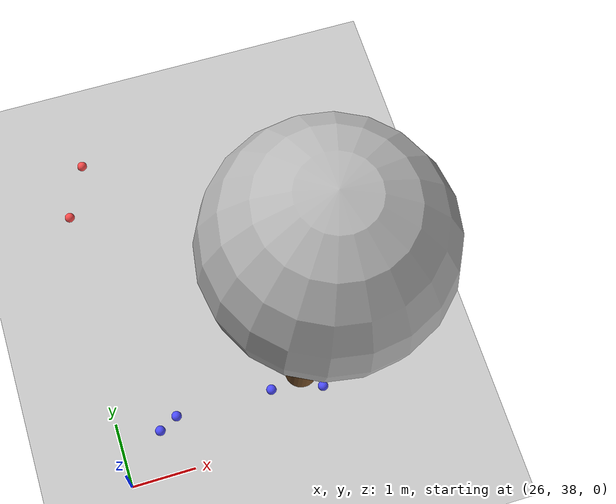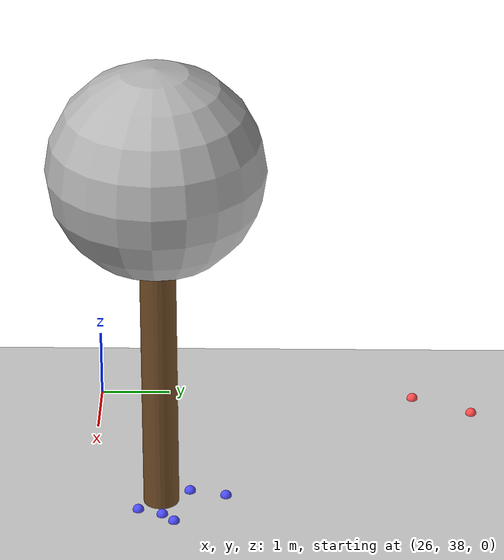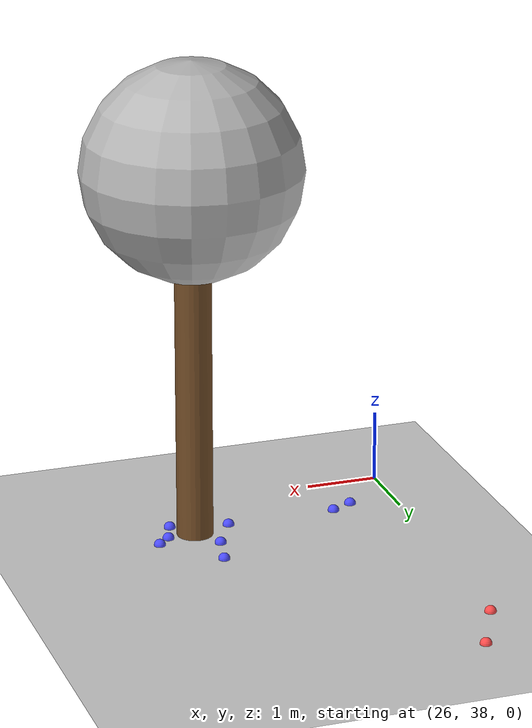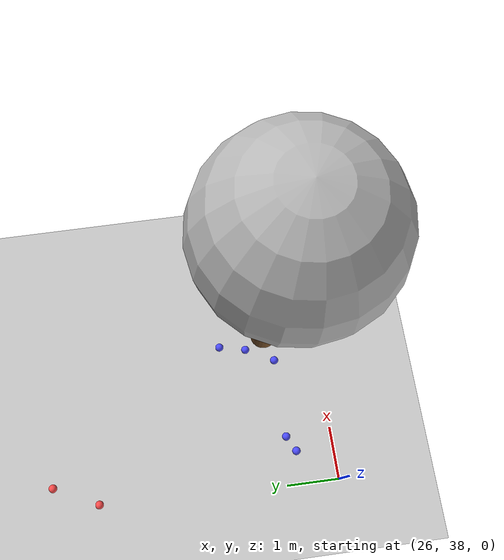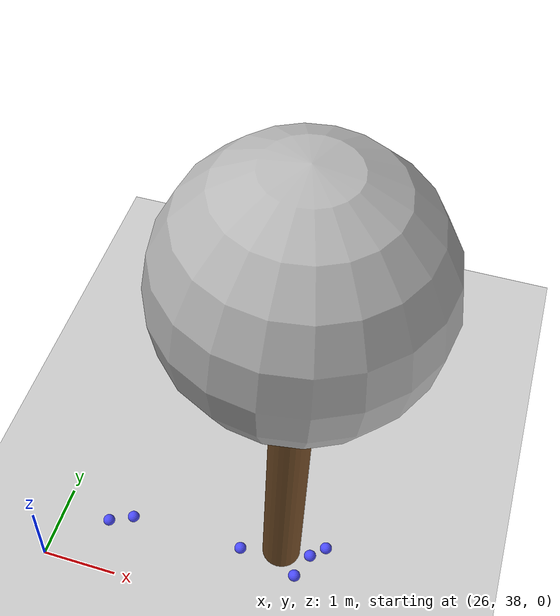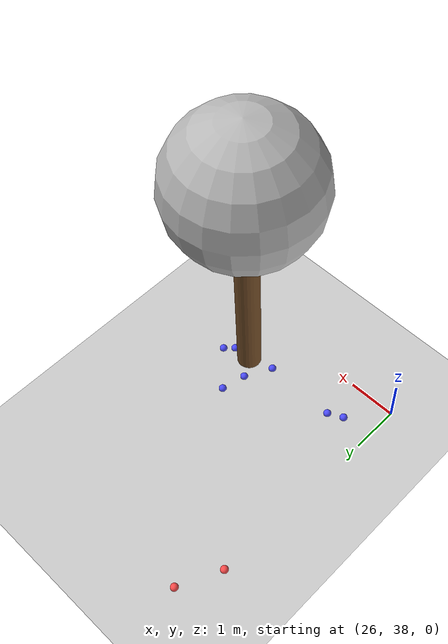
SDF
<sdf version="1.7">
 <world name="default">
  <model name="ground_plane">
   <static>1</static>
   <link name="link">
    <collision name="collision">
     <geometry><plane><normal>0 0 1</normal><size>100 100</size></plane></geometry>
     <surface>
      <contact><collide_bitmask>65535</collide_bitmask></contact>
      <friction><ode><mu>100</mu><mu2>50</mu2></ode></friction>
     </surface>
    </collision>
    <visual name="visual">
     <cast_shadows>0</cast_shadows>
     <geometry><plane><normal>0 0 1</normal><size>100 100</size></plane></geometry>
     <material>
      <script><uri>file://media/materials/scripts/gazebo.material</uri><name>Gazebo/Grey</name></script>
     </material>
    </visual>
   </link>
  </model>
  <model name="tree_simple_18">
   <static>1</static>
   <link name="link">
    <pose>0 0 0.1 0 -0 0</pose>
    <inertial>
     <mass>666</mass>
     <inertia>
      <ixx>0.0861167</ixx>
      <ixy>0</ixy>
      <ixz>0</ixz>
      <iyy>0.0861167</iyy>
      <iyz>0</iyz>
      <izz>0.0861167</izz>
     </inertia>
    </inertial>
    <collision name="collision_trunk">
     <pose>0 0 2 0 -0 0</pose>
     <geometry><cylinder><radius>0.25</radius><length>4</length></cylinder></geometry>
     <surface>
      <contact>
       <poissons_ratio>0.347</poissons_ratio>
       <elastic_modulus>8.8e+09</elastic_modulus>
       <ode><kp>100000</kp><kd>100</kd><max_vel>100</max_vel><min_depth>0.001</min_depth></ode>
      </contact>
      <friction>
       <torsional>
        <coefficient>1</coefficient>
        <use_patch_radius>0</use_patch_radius>
        <surface_radius>0.01</surface_radius>
       </torsional>
      </friction>
     </surface>
    </collision>
    <collision name="collision_treetop">
     <pose>0 0 5.2 0 -0 0</pose>
     <geometry><sphere><radius>1.5</radius></sphere></geometry>
     <surface>
      <contact>
       <poissons_ratio>0.347</poissons_ratio>
       <elastic_modulus>8.8e+09</elastic_modulus>
       <ode><kp>100000</kp><kd>100</kd><max_vel>100</max_vel><min_depth>0.001</min_depth></ode>
      </contact>
      <friction>
       <torsional>
        <coefficient>1</coefficient>
        <use_patch_radius>0</use_patch_radius>
        <surface_radius>0.01</surface_radius>
       </torsional>
      </friction>
     </surface>
    </collision>
    <visual name="trunk">
     <pose>0 0 2 0 -0 0</pose>
     <geometry><cylinder><radius>0.25</radius><length>4</length></cylinder></geometry>
     <material>
      <script>
       <uri>model://tree_simple/scripts</uri>
       <uri>model://tree_simple/materials/textures</uri>
       <name>TreeSimple/Trunk</name>
      </script>
     </material>
    </visual>
    <visual name="treetop">
     <pose>0 0 5.2 0 -0 0</pose>
     <geometry><sphere><radius>1.5</radius></sphere></geometry>
     <material>
      <script>
       <uri>model://tree_simple/scripts</uri>
       <uri>model://tree_simple/materials/textures</uri>
       <name>TreeSimple/Treetop</name>
      </script>
     </material>
    </visual>
   </link>
   <pose>29 39 -0.1 0 -0 0</pose>
  </model>
  <model name="seed_red_46">
   <link name="link">
    <inertial>
     <mass>1</mass>
     <inertia><ixx>0.1</ixx><ixy>0</ixy><ixz>0</ixz><iyy>0.1</iyy><iyz>0</iyz><izz>0.1</izz></inertia>
    </inertial>
    <visual name="visual">
     <geometry><sphere><radius>0.08</radius></sphere></geometry>
     <material>
      <script><name>Gazebo/Grey</name><uri>file://media/materials/scripts/gazebo.material</uri></script>
      <shader type="pixel"><normal_map>__default__</normal_map></shader>
      <ambient>1 0.3 0.3 1</ambient>
      <diffuse>0.7 0.7 0.7 1</diffuse>
      <specular>0.01 0.01 0.01 1</specular>
      <emissive>0 0 0 1</emissive>
     </material>
    </visual>
    <collision name="collision">
     <geometry><sphere><radius>0.0005</radius></sphere></geometry>
     <surface>
      <friction>
       <ode><mu>1</mu><mu2>1</mu2><fdir1>0 0 0</fdir1><slip1>0</slip1><slip2>0</slip2></ode>
       <torsional>
        <coefficient>1</coefficient>
        <patch_radius>0</patch_radius>
        <surface_radius>0</surface_radius>
        <use_patch_radius>1</use_patch_radius>
        <ode><slip>0</slip></ode>
       </torsional>
      </friction>
      <bounce><restitution_coefficient>0</restitution_coefficient><threshold>1e+06</threshold></bounce>
      <contact>
       <collide_without_contact>0</collide_without_contact>
       <collide_without_contact_bitmask>1</collide_without_contact_bitmask>
       <collide_bitmask>1</collide_bitmask>
       <ode>
        <soft_cfm>0</soft_cfm>
        <soft_erp>0.2</soft_erp>
        <kp>1e+13</kp>
        <kd>1</kd>
        <max_vel>0.01</max_vel>
        <min_depth>0</min_depth>
       </ode>
       <bullet>
        <split_impulse>1</split_impulse>
        <split_impulse_penetration_threshold>-0.01</split_impulse_penetration_threshold>
        <soft_cfm>0</soft_cfm>
        <soft_erp>0.2</soft_erp>
        <kp>1e+13</kp>
        <kd>1</kd>
       </bullet>
      </contact>
     </surface>
    </collision>
   </link>
   <static>0</static>
   <pose>26.1329 42.5972 0.0005 0 -0 0</pose>
  </model>
  <model name="seed_red_47">
   <link name="link">
    <inertial>
     <mass>1</mass>
     <inertia><ixx>0.1</ixx><ixy>0</ixy><ixz>0</ixz><iyy>0.1</iyy><iyz>0</iyz><izz>0.1</izz></inertia>
    </inertial>
    <visual name="visual">
     <geometry><sphere><radius>0.08</radius></sphere></geometry>
     <material>
      <script><name>Gazebo/Grey</name><uri>file://media/materials/scripts/gazebo.material</uri></script>
      <shader type="pixel"><normal_map>__default__</normal_map></shader>
      <ambient>1 0.3 0.3 1</ambient>
      <diffuse>0.7 0.7 0.7 1</diffuse>
      <specular>0.01 0.01 0.01 1</specular>
      <emissive>0 0 0 1</emissive>
     </material>
    </visual>
    <collision name="collision">
     <geometry><sphere><radius>0.0005</radius></sphere></geometry>
     <surface>
      <friction>
       <ode><mu>1</mu><mu2>1</mu2><fdir1>0 0 0</fdir1><slip1>0</slip1><slip2>0</slip2></ode>
       <torsional>
        <coefficient>1</coefficient>
        <patch_radius>0</patch_radius>
        <surface_radius>0</surface_radius>
        <use_patch_radius>1</use_patch_radius>
        <ode><slip>0</slip></ode>
       </torsional>
      </friction>
      <bounce><restitution_coefficient>0</restitution_coefficient><threshold>1e+06</threshold></bounce>
      <contact>
       <collide_without_contact>0</collide_without_contact>
       <collide_without_contact_bitmask>1</collide_without_contact_bitmask>
       <collide_bitmask>1</collide_bitmask>
       <ode>
        <soft_cfm>0</soft_cfm>
        <soft_erp>0.2</soft_erp>
        <kp>1e+13</kp>
        <kd>1</kd>
        <max_vel>0.01</max_vel>
        <min_depth>0</min_depth>
       </ode>
       <bullet>
        <split_impulse>1</split_impulse>
        <split_impulse_penetration_threshold>-0.01</split_impulse_penetration_threshold>
        <soft_cfm>0</soft_cfm>
        <soft_erp>0.2</soft_erp>
        <kp>1e+13</kp>
        <kd>1</kd>
       </bullet>
      </contact>
     </surface>
    </collision>
   </link>
   <static>0</static>
   <pose>26.5521 43.4516 0.0005 0 -0 0</pose>
  </model>
  <model name="seed_blue_35">
   <link name="link">
    <inertial>
     <mass>1</mass>
     <inertia><ixx>0.1</ixx><ixy>0</ixy><ixz>0</ixz><iyy>0.1</iyy><iyz>0</iyz><izz>0.1</izz></inertia>
    </inertial>
    <visual name="visual">
     <geometry><sphere><radius>0.08</radius></sphere></geometry>
     <material>
      <script><name>Gazebo/Grey</name><uri>file://media/materials/scripts/gazebo.material</uri></script>
      <shader type="pixel"><normal_map>__default__</normal_map></shader>
      <ambient>0.3 0.3 1 1</ambient>
      <diffuse>0.7 0.7 0.7 1</diffuse>
      <specular>0.01 0.01 0.01 1</specular>
      <emissive>0 0 0 1</emissive>
     </material>
    </visual>
    <collision name="collision">
     <geometry><sphere><radius>0.0005</radius></sphere></geometry>
     <surface>
      <friction>
       <ode><mu>1</mu><mu2>1</mu2><fdir1>0 0 0</fdir1><slip1>0</slip1><slip2>0</slip2></ode>
       <torsional>
        <coefficient>1</coefficient>
        <patch_radius>0</patch_radius>
        <surface_radius>0</surface_radius>
        <use_patch_radius>1</use_patch_radius>
        <ode><slip>0</slip></ode>
       </torsional>
      </friction>
      <bounce><restitution_coefficient>0</restitution_coefficient><threshold>1e+06</threshold></bounce>
      <contact>
       <collide_without_contact>0</collide_without_contact>
       <collide_without_contact_bitmask>1</collide_without_contact_bitmask>
       <collide_bitmask>1</collide_bitmask>
       <ode>
        <soft_cfm>0</soft_cfm>
        <soft_erp>0.2</soft_erp>
        <kp>1e+13</kp>
        <kd>1</kd>
        <max_vel>0.01</max_vel>
        <min_depth>0</min_depth>
       </ode>
       <bullet>
        <split_impulse>1</split_impulse>
        <split_impulse_penetration_threshold>-0.01</split_impulse_penetration_threshold>
        <soft_cfm>0</soft_cfm>
        <soft_erp>0.2</soft_erp>
        <kp>1e+13</kp>
        <kd>1</kd>
       </bullet>
      </contact>
     </surface>
    </collision>
   </link>
   <static>0</static>
   <pose>28.7622 39.3973 0.0005 0 -0 0</pose>
  </model>
  <model name="seed_blue_37">
   <link name="link">
    <inertial>
     <mass>1</mass>
     <inertia><ixx>0.1</ixx><ixy>0</ixy><ixz>0</ixz><iyy>0.1</iyy><iyz>0</iyz><izz>0.1</izz></inertia>
    </inertial>
    <visual name="visual">
     <geometry><sphere><radius>0.08</radius></sphere></geometry>
     <material>
      <script><name>Gazebo/Grey</name><uri>file://media/materials/scripts/gazebo.material</uri></script>
      <shader type="pixel"><normal_map>__default__</normal_map></shader>
      <ambient>0.3 0.3 1 1</ambient>
      <diffuse>0.7 0.7 0.7 1</diffuse>
      <specular>0.01 0.01 0.01 1</specular>
      <emissive>0 0 0 1</emissive>
     </material>
    </visual>
    <collision name="collision">
     <geometry><sphere><radius>0.0005</radius></sphere></geometry>
     <surface>
      <friction>
       <ode><mu>1</mu><mu2>1</mu2><fdir1>0 0 0</fdir1><slip1>0</slip1><slip2>0</slip2></ode>
       <torsional>
        <coefficient>1</coefficient>
        <patch_radius>0</patch_radius>
        <surface_radius>0</surface_radius>
        <use_patch_radius>1</use_patch_radius>
        <ode><slip>0</slip></ode>
       </torsional>
      </friction>
      <bounce><restitution_coefficient>0</restitution_coefficient><threshold>1e+06</threshold></bounce>
      <contact>
       <collide_without_contact>0</collide_without_contact>
       <collide_without_contact_bitmask>1</collide_without_contact_bitmask>
       <collide_bitmask>1</collide_bitmask>
       <ode>
        <soft_cfm>0</soft_cfm>
        <soft_erp>0.2</soft_erp>
        <kp>1e+13</kp>
        <kd>1</kd>
        <max_vel>0.01</max_vel>
        <min_depth>0</min_depth>
       </ode>
       <bullet>
        <split_impulse>1</split_impulse>
        <split_impulse_penetration_threshold>-0.01</split_impulse_penetration_threshold>
        <soft_cfm>0</soft_cfm>
        <soft_erp>0.2</soft_erp>
        <kp>1e+13</kp>
        <kd>1</kd>
       </bullet>
      </contact>
     </surface>
    </collision>
   </link>
   <static>0</static>
   <pose>28.879 39.9078 0.0005 0 -0 0</pose>
  </model>
  <model name="seed_blue_38">
   <link name="link">
    <inertial>
     <mass>1</mass>
     <inertia><ixx>0.1</ixx><ixy>0</ixy><ixz>0</ixz><iyy>0.1</iyy><iyz>0</iyz><izz>0.1</izz></inertia>
    </inertial>
    <visual name="visual">
     <geometry><sphere><radius>0.08</radius></sphere></geometry>
     <material>
      <script><name>Gazebo/Grey</name><uri>file://media/materials/scripts/gazebo.material</uri></script>
      <shader type="pixel"><normal_map>__default__</normal_map></shader>
      <ambient>0.3 0.3 1 1</ambient>
      <diffuse>0.7 0.7 0.7 1</diffuse>
      <specular>0.01 0.01 0.01 1</specular>
      <emissive>0 0 0 1</emissive>
     </material>
    </visual>
    <collision name="collision">
     <geometry><sphere><radius>0.0005</radius></sphere></geometry>
     <surface>
      <friction>
       <ode><mu>1</mu><mu2>1</mu2><fdir1>0 0 0</fdir1><slip1>0</slip1><slip2>0</slip2></ode>
       <torsional>
        <coefficient>1</coefficient>
        <patch_radius>0</patch_radius>
        <surface_radius>0</surface_radius>
        <use_patch_radius>1</use_patch_radius>
        <ode><slip>0</slip></ode>
       </torsional>
      </friction>
      <bounce><restitution_coefficient>0</restitution_coefficient><threshold>1e+06</threshold></bounce>
      <contact>
       <collide_without_contact>0</collide_without_contact>
       <collide_without_contact_bitmask>1</collide_without_contact_bitmask>
       <collide_bitmask>1</collide_bitmask>
       <ode>
        <soft_cfm>0</soft_cfm>
        <soft_erp>0.2</soft_erp>
        <kp>1e+13</kp>
        <kd>1</kd>
        <max_vel>0.01</max_vel>
        <min_depth>0</min_depth>
       </ode>
       <bullet>
        <split_impulse>1</split_impulse>
        <split_impulse_penetration_threshold>-0.01</split_impulse_penetration_threshold>
        <soft_cfm>0</soft_cfm>
        <soft_erp>0.2</soft_erp>
        <kp>1e+13</kp>
        <kd>1</kd>
       </bullet>
      </contact>
     </surface>
    </collision>
   </link>
   <static>0</static>
   <pose>28.4718 38.8562 0.0005 0 -0 0</pose>
  </model>
  <model name="seed_blue_39">
   <link name="link">
    <inertial>
     <mass>1</mass>
     <inertia><ixx>0.1</ixx><ixy>0</ixy><ixz>0</ixz><iyy>0.1</iyy><iyz>0</iyz><izz>0.1</izz></inertia>
    </inertial>
    <visual name="visual">
     <geometry><sphere><radius>0.08</radius></sphere></geometry>
     <material>
      <script><name>Gazebo/Grey</name><uri>file://media/materials/scripts/gazebo.material</uri></script>
      <shader type="pixel"><normal_map>__default__</normal_map></shader>
      <ambient>0.3 0.3 1 1</ambient>
      <diffuse>0.7 0.7 0.7 1</diffuse>
      <specular>0.01 0.01 0.01 1</specular>
      <emissive>0 0 0 1</emissive>
     </material>
    </visual>
    <collision name="collision">
     <geometry><sphere><radius>0.0005</radius></sphere></geometry>
     <surface>
      <friction>
       <ode><mu>1</mu><mu2>1</mu2><fdir1>0 0 0</fdir1><slip1>0</slip1><slip2>0</slip2></ode>
       <torsional>
        <coefficient>1</coefficient>
        <patch_radius>0</patch_radius>
        <surface_radius>0</surface_radius>
        <use_patch_radius>1</use_patch_radius>
        <ode><slip>0</slip></ode>
       </torsional>
      </friction>
      <bounce><restitution_coefficient>0</restitution_coefficient><threshold>1e+06</threshold></bounce>
      <contact>
       <collide_without_contact>0</collide_without_contact>
       <collide_without_contact_bitmask>1</collide_without_contact_bitmask>
       <collide_bitmask>1</collide_bitmask>
       <ode>
        <soft_cfm>0</soft_cfm>
        <soft_erp>0.2</soft_erp>
        <kp>1e+13</kp>
        <kd>1</kd>
        <max_vel>0.01</max_vel>
        <min_depth>0</min_depth>
       </ode>
       <bullet>
        <split_impulse>1</split_impulse>
        <split_impulse_penetration_threshold>-0.01</split_impulse_penetration_threshold>
        <soft_cfm>0</soft_cfm>
        <soft_erp>0.2</soft_erp>
        <kp>1e+13</kp>
        <kd>1</kd>
       </bullet>
      </contact>
     </surface>
    </collision>
   </link>
   <static>0</static>
   <pose>29.3905 39.0274 0.0005 0 -0 0</pose>
  </model>
  <model name="seed_blue_40">
   <link name="link">
    <inertial>
     <mass>1</mass>
     <inertia><ixx>0.1</ixx><ixy>0</ixy><ixz>0</ixz><iyy>0.1</iyy><iyz>0</iyz><izz>0.1</izz></inertia>
    </inertial>
    <visual name="visual">
     <geometry><sphere><radius>0.08</radius></sphere></geometry>
     <material>
      <script><name>Gazebo/Grey</name><uri>file://media/materials/scripts/gazebo.material</uri></script>
      <shader type="pixel"><normal_map>__default__</normal_map></shader>
      <ambient>0.3 0.3 1 1</ambient>
      <diffuse>0.7 0.7 0.7 1</diffuse>
      <specular>0.01 0.01 0.01 1</specular>
      <emissive>0 0 0 1</emissive>
     </material>
    </visual>
    <collision name="collision">
     <geometry><sphere><radius>0.0005</radius></sphere></geometry>
     <surface>
      <friction>
       <ode><mu>1</mu><mu2>1</mu2><fdir1>0 0 0</fdir1><slip1>0</slip1><slip2>0</slip2></ode>
       <torsional>
        <coefficient>1</coefficient>
        <patch_radius>0</patch_radius>
        <surface_radius>0</surface_radius>
        <use_patch_radius>1</use_patch_radius>
        <ode><slip>0</slip></ode>
       </torsional>
      </friction>
      <bounce><restitution_coefficient>0</restitution_coefficient><threshold>1e+06</threshold></bounce>
      <contact>
       <collide_without_contact>0</collide_without_contact>
       <collide_without_contact_bitmask>1</collide_without_contact_bitmask>
       <collide_bitmask>1</collide_bitmask>
       <ode>
        <soft_cfm>0</soft_cfm>
        <soft_erp>0.2</soft_erp>
        <kp>1e+13</kp>
        <kd>1</kd>
        <max_vel>0.01</max_vel>
        <min_depth>0</min_depth>
       </ode>
       <bullet>
        <split_impulse>1</split_impulse>
        <split_impulse_penetration_threshold>-0.01</split_impulse_penetration_threshold>
        <soft_cfm>0</soft_cfm>
        <soft_erp>0.2</soft_erp>
        <kp>1e+13</kp>
        <kd>1</kd>
       </bullet>
      </contact>
     </surface>
    </collision>
   </link>
   <static>0</static>
   <pose>29.5653 39.198 0.0005 0 -0 0</pose>
  </model>
  <model name="seed_blue_44">
   <link name="link">
    <inertial>
     <mass>1</mass>
     <inertia><ixx>0.1</ixx><ixy>0</ixy><ixz>0</ixz><iyy>0.1</iyy><iyz>0</iyz><izz>0.1</izz></inertia>
    </inertial>
    <visual name="visual">
     <geometry><sphere><radius>0.08</radius></sphere></geometry>
     <material>
      <script><name>Gazebo/Grey</name><uri>file://media/materials/scripts/gazebo.material</uri></script>
      <shader type="pixel"><normal_map>__default__</normal_map></shader>
      <ambient>0.3 0.3 1 1</ambient>
      <diffuse>0.7 0.7 0.7 1</diffuse>
      <specular>0.01 0.01 0.01 1</specular>
      <emissive>0 0 0 1</emissive>
     </material>
    </visual>
    <collision name="collision">
     <geometry><sphere><radius>0.0005</radius></sphere></geometry>
     <surface>
      <friction>
       <ode><mu>1</mu><mu2>1</mu2><fdir1>0 0 0</fdir1><slip1>0</slip1><slip2>0</slip2></ode>
       <torsional>
        <coefficient>1</coefficient>
        <patch_radius>0</patch_radius>
        <surface_radius>0</surface_radius>
        <use_patch_radius>1</use_patch_radius>
        <ode><slip>0</slip></ode>
       </torsional>
      </friction>
      <bounce><restitution_coefficient>0</restitution_coefficient><threshold>1e+06</threshold></bounce>
      <contact>
       <collide_without_contact>0</collide_without_contact>
       <collide_without_contact_bitmask>1</collide_without_contact_bitmask>
       <collide_bitmask>1</collide_bitmask>
       <ode>
        <soft_cfm>0</soft_cfm>
        <soft_erp>0.2</soft_erp>
        <kp>1e+13</kp>
        <kd>1</kd>
        <max_vel>0.01</max_vel>
        <min_depth>0</min_depth>
       </ode>
       <bullet>
        <split_impulse>1</split_impulse>
        <split_impulse_penetration_threshold>-0.01</split_impulse_penetration_threshold>
        <soft_cfm>0</soft_cfm>
        <soft_erp>0.2</soft_erp>
        <kp>1e+13</kp>
        <kd>1</kd>
       </bullet>
      </contact>
     </surface>
    </collision>
   </link>
   <static>0</static>
   <pose>26.6369 38.7173 0.0005 0 -0 0</pose>
  </model>
  <model name="seed_blue_47">
   <link name="link">
    <inertial>
     <mass>1</mass>
     <inertia><ixx>0.1</ixx><ixy>0</ixy><ixz>0</ixz><iyy>0.1</iyy><iyz>0</iyz><izz>0.1</izz></inertia>
    </inertial>
    <visual name="visual">
     <geometry><sphere><radius>0.08</radius></sphere></geometry>
     <material>
      <script><name>Gazebo/Grey</name><uri>file://media/materials/scripts/gazebo.material</uri></script>
      <shader type="pixel"><normal_map>__default__</normal_map></shader>
      <ambient>0.3 0.3 1 1</ambient>
      <diffuse>0.7 0.7 0.7 1</diffuse>
      <specular>0.01 0.01 0.01 1</specular>
      <emissive>0 0 0 1</emissive>
     </material>
    </visual>
    <collision name="collision">
     <geometry><sphere><radius>0.0005</radius></sphere></geometry>
     <surface>
      <friction>
       <ode><mu>1</mu><mu2>1</mu2><fdir1>0 0 0</fdir1><slip1>0</slip1><slip2>0</slip2></ode>
       <torsional>
        <coefficient>1</coefficient>
        <patch_radius>0</patch_radius>
        <surface_radius>0</surface_radius>
        <use_patch_radius>1</use_patch_radius>
        <ode><slip>0</slip></ode>
       </torsional>
      </friction>
      <bounce><restitution_coefficient>0</restitution_coefficient><threshold>1e+06</threshold></bounce>
      <contact>
       <collide_without_contact>0</collide_without_contact>
       <collide_without_contact_bitmask>1</collide_without_contact_bitmask>
       <collide_bitmask>1</collide_bitmask>
       <ode>
        <soft_cfm>0</soft_cfm>
        <soft_erp>0.2</soft_erp>
        <kp>1e+13</kp>
        <kd>1</kd>
        <max_vel>0.01</max_vel>
        <min_depth>0</min_depth>
       </ode>
       <bullet>
        <split_impulse>1</split_impulse>
        <split_impulse_penetration_threshold>-0.01</split_impulse_penetration_threshold>
        <soft_cfm>0</soft_cfm>
        <soft_erp>0.2</soft_erp>
        <kp>1e+13</kp>
        <kd>1</kd>
       </bullet>
      </contact>
     </surface>
    </collision>
   </link>
   <static>0</static>
   <pose>26.9373 38.8676 0.0005 0 -0 0</pose>
  </model>
  <model name="seed_blue_50">
   <link name="link">
    <inertial>
     <mass>1</mass>
     <inertia><ixx>0.1</ixx><ixy>0</ixy><ixz>0</ixz><iyy>0.1</iyy><iyz>0</iyz><izz>0.1</izz></inertia>
    </inertial>
    <visual name="visual">
     <geometry><sphere><radius>0.08</radius></sphere></geometry>
     <material>
      <script><name>Gazebo/Grey</name><uri>file://media/materials/scripts/gazebo.material</uri></script>
      <shader type="pixel"><normal_map>__default__</normal_map></shader>
      <ambient>0.3 0.3 1 1</ambient>
      <diffuse>0.7 0.7 0.7 1</diffuse>
      <specular>0.01 0.01 0.01 1</specular>
      <emissive>0 0 0 1</emissive>
     </material>
    </visual>
    <collision name="collision">
     <geometry><sphere><radius>0.0005</radius></sphere></geometry>
     <surface>
      <friction>
       <ode><mu>1</mu><mu2>1</mu2><fdir1>0 0 0</fdir1><slip1>0</slip1><slip2>0</slip2></ode>
       <torsional>
        <coefficient>1</coefficient>
        <patch_radius>0</patch_radius>
        <surface_radius>0</surface_radius>
        <use_patch_radius>1</use_patch_radius>
        <ode><slip>0</slip></ode>
       </torsional>
      </friction>
      <bounce><restitution_coefficient>0</restitution_coefficient><threshold>1e+06</threshold></bounce>
      <contact>
       <collide_without_contact>0</collide_without_contact>
       <collide_without_contact_bitmask>1</collide_without_contact_bitmask>
       <collide_bitmask>1</collide_bitmask>
       <ode>
        <soft_cfm>0</soft_cfm>
        <soft_erp>0.2</soft_erp>
        <kp>1e+13</kp>
        <kd>1</kd>
        <max_vel>0.01</max_vel>
        <min_depth>0</min_depth>
       </ode>
       <bullet>
        <split_impulse>1</split_impulse>
        <split_impulse_penetration_threshold>-0.01</split_impulse_penetration_threshold>
        <soft_cfm>0</soft_cfm>
        <soft_erp>0.2</soft_erp>
        <kp>1e+13</kp>
        <kd>1</kd>
       </bullet>
      </contact>
     </surface>
    </collision>
   </link>
   <static>0</static>
   <pose>29.2664 38.6861 0.0005 0 -0 0</pose>
  </model>
  <model name="seed_blue_51">
   <link name="link">
    <inertial>
     <mass>1</mass>
     <inertia><ixx>0.1</ixx><ixy>0</ixy><ixz>0</ixz><iyy>0.1</iyy><iyz>0</iyz><izz>0.1</izz></inertia>
    </inertial>
    <visual name="visual">
     <geometry><sphere><radius>0.08</radius></sphere></geometry>
     <material>
      <script><name>Gazebo/Grey</name><uri>file://media/materials/scripts/gazebo.material</uri></script>
      <shader type="pixel"><normal_map>__default__</normal_map></shader>
      <ambient>0.3 0.3 1 1</ambient>
      <diffuse>0.7 0.7 0.7 1</diffuse>
      <specular>0.01 0.01 0.01 1</specular>
      <emissive>0 0 0 1</emissive>
     </material>
    </visual>
    <collision name="collision">
     <geometry><sphere><radius>0.0005</radius></sphere></geometry>
     <surface>
      <friction>
       <ode><mu>1</mu><mu2>1</mu2><fdir1>0 0 0</fdir1><slip1>0</slip1><slip2>0</slip2></ode>
       <torsional>
        <coefficient>1</coefficient>
        <patch_radius>0</patch_radius>
        <surface_radius>0</surface_radius>
        <use_patch_radius>1</use_patch_radius>
        <ode><slip>0</slip></ode>
       </torsional>
      </friction>
      <bounce><restitution_coefficient>0</restitution_coefficient><threshold>1e+06</threshold></bounce>
      <contact>
       <collide_without_contact>0</collide_without_contact>
       <collide_without_contact_bitmask>1</collide_without_contact_bitmask>
       <collide_bitmask>1</collide_bitmask>
       <ode>
        <soft_cfm>0</soft_cfm>
        <soft_erp>0.2</soft_erp>
        <kp>1e+13</kp>
        <kd>1</kd>
        <max_vel>0.01</max_vel>
        <min_depth>0</min_depth>
       </ode>
       <bullet>
        <split_impulse>1</split_impulse>
        <split_impulse_penetration_threshold>-0.01</split_impulse_penetration_threshold>
        <soft_cfm>0</soft_cfm>
        <soft_erp>0.2</soft_erp>
        <kp>1e+13</kp>
        <kd>1</kd>
       </bullet>
      </contact>
     </surface>
    </collision>
   </link>
   <static>0</static>
   <pose>28.9232 38.882 0.0005 0 -0 0</pose>
  </model>
 </world>
</sdf>
